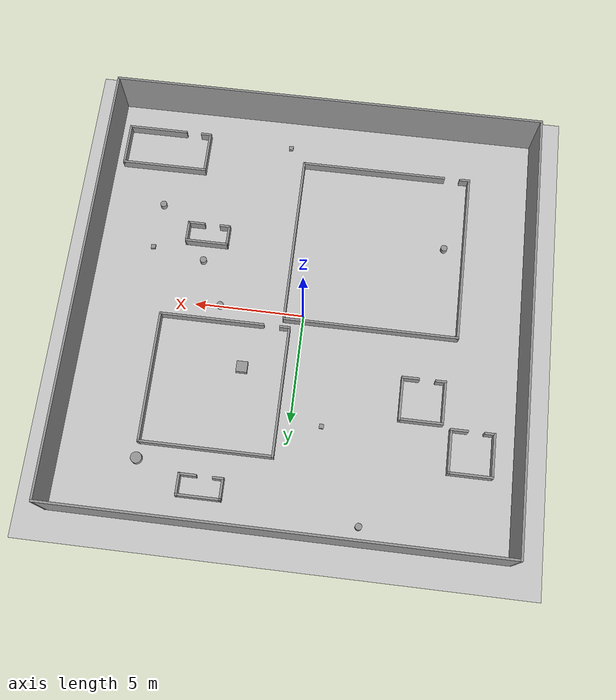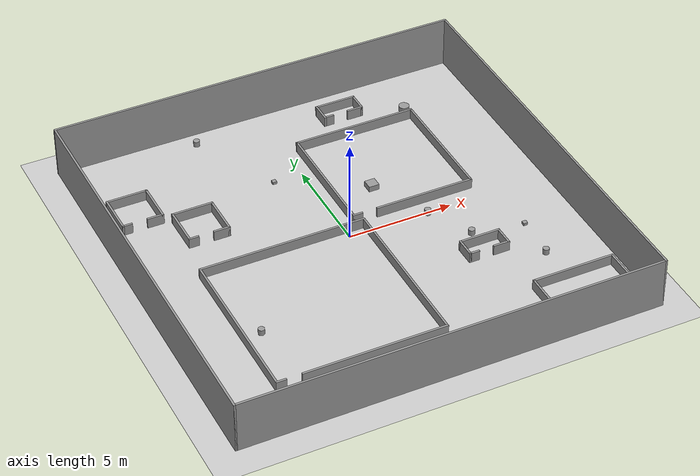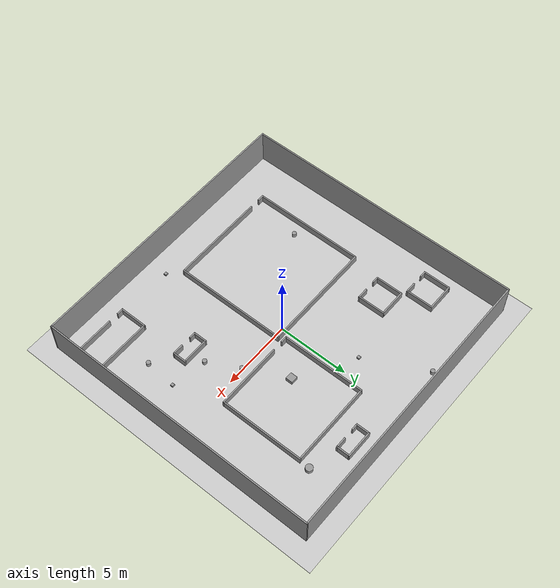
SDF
<sdf version="1.6">
  <world name="default">
    <light name="sun" type="directional">
      <cast_shadows>1</cast_shadows>
      <pose frame="">0 0 10 0 -0 0</pose>
      <diffuse>0.8 0.8 0.8 1</diffuse>
      <specular>0.2 0.2 0.2 1</specular>
      <attenuation>
        <range>1000</range>
        <constant>0.9</constant>
        <linear>0.01</linear>
        <quadratic>0.001</quadratic>
      </attenuation>
      <direction>-0.5 0.1 -0.9</direction>
    </light>
    <model name="ground_plane">
      <static>1</static>
      <link name="link">
        <collision name="collision">
          <geometry>
            <plane>
              <normal>0 0 1</normal>
              <size>20 20</size>
            </plane>
          </geometry>
          <surface>
            <contact>
              <collide_bitmask>65535</collide_bitmask>
              <ode />
            </contact>
            <friction>
              <ode>
                <mu>100</mu>
                <mu2>50</mu2>
              </ode>
              <torsional>
                <ode />
              </torsional>
            </friction>
            <bounce />
          </surface>
          <max_contacts>10</max_contacts>
        </collision>
        <visual name="visual">
          <cast_shadows>0</cast_shadows>
          <geometry>
            <plane>
              <normal>0 0 1</normal>
              <size>20 20</size>
            </plane>
          </geometry>
          <material>
            <script>
              <uri>file://media/materials/scripts/gazebo.material</uri>
              <name>Gazebo/Grey</name>
            </script>
          </material>
        </visual>
        <self_collide>0</self_collide>
        <enable_wind>0</enable_wind>
        <kinematic>0</kinematic>
      </link>
    </model>
     <model name="outsidewall.sdf">
    <pose frame="">0 0 0 0 -0 0</pose>
    <link name="Wall_3">
      <collision name="Wall_3_Collision">
        <geometry>
          <box>
            <size>20 0.10 2.5</size>
          </box>
        </geometry>
        <pose frame="">0 0 1.25 0 -0 0</pose>
      </collision>
      <visual name="Wall_3_Visual">
        <pose frame="">0 0 1.25 0 -0 0</pose>
        <geometry>
          <box>
            <size>20 0.10 2.5</size>
          </box>
        </geometry>
        <material>
          <script>
            <uri>file://media/materials/scripts/gazebo.material</uri>
            <name>Gazebo/Grey</name>
          </script>
          <ambient>1 1 1 1</ambient>
        </material>
        <meta>
          <layer>0</layer>
        </meta>
      </visual>
      <pose frame="">0 9.95 0 0 -0 0</pose>
    </link>
    <link name="Wall_5">
      <collision name="Wall_5_Collision">
        <geometry>
          <box>
            <size>20 0.10 2.5</size>
          </box>
        </geometry>
        <pose frame="">0 0 1.25 0 -0 0</pose>
      </collision>
      <visual name="Wall_5_Visual">
        <pose frame="">0 0 1.25 0 -0 0</pose>
        <geometry>
          <box>
            <size>20 0.10 2.5</size>
          </box>
        </geometry>
        <material>
          <script>
            <uri>file://media/materials/scripts/gazebo.material</uri>
            <name>Gazebo/Grey</name>
          </script>
          <ambient>1 1 1 1</ambient>
        </material>
        <meta>
          <layer>0</layer>
        </meta>
      </visual>
      <pose frame="">-9.95 0 0 0 -0 1.5707</pose>
    </link>
    <link name="Wall_6">
      <collision name="Wall_6_Collision">
        <geometry>
          <box>
            <size>20 0.10 2.5</size>
          </box>
        </geometry>
        <pose frame="">0 0 1.25 0 -0 0</pose>
      </collision>
      <visual name="Wall_6_Visual">
        <pose frame="">0 0 1.25 0 -0 0</pose>
        <geometry>
          <box>
            <size>20 0.10 2.5</size>
          </box>
        </geometry>
        <material>
          <script>
            <uri>file://media/materials/scripts/gazebo.material</uri>
            <name>Gazebo/Grey</name>
          </script>
          <ambient>1 1 1 1</ambient>
        </material>
        <meta>
          <layer>0</layer>
        </meta>
      </visual>
      <pose frame="">0 -9.95 0 0 -0 0</pose>
    </link>
    <link name="Wall_7">
      <collision name="Wall_7_Collision">
        <geometry>
          <box>
            <size>20 0.10 2.5</size>
          </box>
        </geometry>
        <pose frame="">0 0 1.25 0 -0 0</pose>
      </collision>
      <visual name="Wall_7_Visual">
        <pose frame="">0 0 1.25 0 -0 0</pose>
        <geometry>
          <box>
            <size>20 0.10 2.5</size>
          </box>
        </geometry>
        <material>
          <script>
            <uri>file://media/materials/scripts/gazebo.material</uri>
            <name>Gazebo/Grey</name>
          </script>
          <ambient>1 1 1 1</ambient>
        </material>
        <meta>
          <layer>0</layer>
        </meta>
      </visual>
      <pose frame="">9.95 0 0 0 -0 1.5707</pose>
    </link>
    <static>1</static>
  </model>
    <gravity>0 0 -9.8</gravity>
    <magnetic_field>6e-06 2.3e-05 -4.2e-05</magnetic_field>
    <atmosphere type="adiabatic" />
    <physics default="0" name="default_physics" type="ode">
      <max_step_size>0.001</max_step_size>
      <real_time_factor>1</real_time_factor>
      <real_time_update_rate>1000</real_time_update_rate>
    </physics>
    <scene>
      <ambient>0.4 0.4 0.4 1</ambient>
      <background>0.7 0.7 0.7 1</background>
      <shadows>1</shadows>
    </scene>
    <audio>
      <device>default</device>
    </audio>
    <wind />
    <spherical_coordinates>
      <surface_model>EARTH_WGS84</surface_model>
      <latitude_deg>0</latitude_deg>
      <longitude_deg>0</longitude_deg>
      <elevation>0</elevation>
      <heading_deg>0</heading_deg>
    </spherical_coordinates>
    <gui fullscreen="0">
      <camera name="user_camera">
        <pose frame="">17.6964 -3.39131 8.77294 0 0.343643 2.9522</pose>
        <view_controller>orbit</view_controller>
        <projection_type>perspective</projection_type>
      </camera>
    </gui>

  <model name="shape1">
    <pose frame="">3.5 8.3 0 0 -0 0</pose>
    <link name="Wall_0">
      <collision name="Wall_0_Collision">
        <geometry>
          <box>
            <size>2 0.1 0.5</size>
          </box>
        </geometry>
        <pose frame="">0 0 0.25 0 -0 0</pose>
      </collision>
      <visual name="Wall_0_Visual">
        <pose frame="">0 0 0.25 0 -0 0</pose>
        <geometry>
          <box>
            <size>2 0.1 0.5</size>
          </box>
        </geometry>
        <material>
          <script>
            <uri>file://media/materials/scripts/gazebo.material</uri>
            <name>Gazebo/Grey</name>
          </script>
          <ambient>1 1 1 1</ambient>
        </material>
        <meta>
          <layer>0</layer>
        </meta>
      </visual>
      <pose frame="">0 0.45 0 0 -0 0</pose>
    </link>
    <link name="Wall_1">
      <collision name="Wall_1_Collision">
        <geometry>
          <box>
            <size>1 0.1 0.5</size>
          </box>
        </geometry>
        <pose frame="">0 0 0.25 0 -0 0</pose>
      </collision>
      <visual name="Wall_1_Visual">
        <pose frame="">0 0 0.25 0 -0 0</pose>
        <geometry>
          <box>
            <size>1 0.1 0.5</size>
          </box>
        </geometry>
        <material>
          <script>
            <uri>file://media/materials/scripts/gazebo.material</uri>
            <name>Gazebo/Grey</name>
          </script>
          <ambient>1 1 1 1</ambient>
        </material>
        <meta>
          <layer>0</layer>
        </meta>
      </visual>
      <pose frame="">0.95 -0 0 0 -0 -1.5708</pose>
    </link>
    <link name="Wall_2">
      <collision name="Wall_2_Collision">
        <geometry>
          <box>
            <size>0.8 0.1 0.5</size>
          </box>
        </geometry>
        <pose frame="">0 0 0.25 0 -0 0</pose>
      </collision>
      <visual name="Wall_2_Visual">
        <pose frame="">0 0 0.25 0 -0 0</pose>
        <geometry>
          <box>
            <size>0.8 0.1 0.5</size>
          </box>
        </geometry>
        <material>
          <script>
            <uri>file://media/materials/scripts/gazebo.material</uri>
            <name>Gazebo/Grey</name>
          </script>
          <ambient>1 1 1 1</ambient>
        </material>
        <meta>
          <layer>0</layer>
        </meta>
      </visual>
      <pose frame="">0.6 -0.45 0 0 -0 3.14159</pose>
    </link>
    <link name="Wall_4">
      <collision name="Wall_4_Collision">
        <geometry>
          <box>
            <size>1 0.1 0.5</size>
          </box>
        </geometry>
        <pose frame="">0 0 0.25 0 -0 0</pose>
      </collision>
      <visual name="Wall_4_Visual">
        <pose frame="">0 0 0.25 0 -0 0</pose>
        <geometry>
          <box>
            <size>1 0.1 0.5</size>
          </box>
        </geometry>
        <material>
          <script>
            <uri>file://media/materials/scripts/gazebo.material</uri>
            <name>Gazebo/Grey</name>
          </script>
          <ambient>1 1 1 1</ambient>
        </material>
        <meta>
          <layer>0</layer>
        </meta>
      </visual>
      <pose frame="">-0.95 -0 0 0 -0 -1.5708</pose>
    </link>
    <link name="Wall_5">
      <collision name="Wall_5_Collision">
        <geometry>
          <box>
            <size>0.499474 0.1 0.5</size>
          </box>
        </geometry>
        <pose frame="">0 0 0.25 0 -0 0</pose>
      </collision>
      <visual name="Wall_5_Visual">
        <pose frame="">0 0 0.25 0 -0 0</pose>
        <geometry>
          <box>
            <size>0.499474 0.1 0.5</size>
          </box>
        </geometry>
        <material>
          <script>
            <uri>file://media/materials/scripts/gazebo.material</uri>
            <name>Gazebo/Grey</name>
          </script>
          <ambient>1 1 1 1</ambient>
        </material>
        <meta>
          <layer>0</layer>
        </meta>
      </visual>
      <pose frame="">-0.75 -0.45 0 0 -0 0</pose>
    </link>
    <static>1</static>
  </model>
<model name="box_d=20">
    <link name="link_2">
      <inertial>
        <mass>1</mass>
        <inertia>
          <ixx>0.166667</ixx>
          <ixy>0</ixy>
          <ixz>0</ixz>
          <iyy>0.166667</iyy>
          <iyz>0</iyz>
          <izz>0.166667</izz>
        </inertia>
        <pose frame="">0 0 0 0 -0 0</pose>
      </inertial>
      <pose frame="">7.4 -2.6 0 0 -0 0</pose>
      <gravity>1</gravity>
      <self_collide>0</self_collide>
      <kinematic>0</kinematic>
      <enable_wind>0</enable_wind>
      <visual name="visual">
        <pose frame="">0 0 0 0 -0 0</pose>
        <geometry>
          <box>
            <size>0.2 0.2 0.2</size>
          </box>
        </geometry>
        <material>
          <lighting>1</lighting>
          <script>
            <uri>file://media/materials/scripts/gazebo.material</uri>
            <name>Gazebo/Grey</name>
          </script>
          <shader type="vertex">
            <normal_map>__default__</normal_map>
          </shader>
          <ambient>0.3 0.3 0.3 1</ambient>
          <diffuse>0.7 0.7 0.7 1</diffuse>
          <specular>0.01 0.01 0.01 1</specular>
          <emissive>0 0 0 1</emissive>
        </material>
        <transparency>0</transparency>
        <cast_shadows>1</cast_shadows>
      </visual>
      <collision name="collision">
        <laser_retro>0</laser_retro>
        <max_contacts>10</max_contacts>
        <pose frame="">0 0 0 0 -0 0</pose>
        <geometry>
          <box>
            <size>0.2 0.2 0.2</size>
          </box>
        </geometry>
        <surface>
          <friction>
            <ode>
              <mu>1</mu>
              <mu2>1</mu2>
              <fdir1>0 0 0</fdir1>
              <slip1>0</slip1>
              <slip2>0</slip2>
            </ode>
            <torsional>
              <coefficient>1</coefficient>
              <patch_radius>0</patch_radius>
              <surface_radius>0</surface_radius>
              <use_patch_radius>1</use_patch_radius>
              <ode>
                <slip>0</slip>
              </ode>
            </torsional>
          </friction>
          <bounce>
            <restitution_coefficient>0</restitution_coefficient>
            <threshold>1e+06</threshold>
          </bounce>
          <contact>
            <collide_without_contact>0</collide_without_contact>
            <collide_without_contact_bitmask>1</collide_without_contact_bitmask>
            <collide_bitmask>1</collide_bitmask>
            <ode>
              <soft_cfm>0</soft_cfm>
              <soft_erp>0.2</soft_erp>
              <kp>1e+13</kp>
              <kd>1</kd>
              <max_vel>0.01</max_vel>
              <min_depth>0</min_depth>
            </ode>
            <bullet>
              <split_impulse>1</split_impulse>
              <split_impulse_penetration_threshold>-0.01</split_impulse_penetration_threshold>
              <soft_cfm>0</soft_cfm>
              <soft_erp>0.2</soft_erp>
              <kp>1e+13</kp>
              <kd>1</kd>
            </bullet>
          </contact>
        </surface>
      </collision>
    </link>
    <static>0</static>
    <allow_auto_disable>1</allow_auto_disable>
  </model>
<model name="shape7">
    <pose frame="">3.5 3.7 0 0 -0 0</pose>
    <link name="Wall_34">
      <collision name="Wall_34_Collision">
        <geometry>
          <box>
            <size>6 0.1 0.5</size>
          </box>
        </geometry>
        <pose frame="">0 0 0.25 0 -0 0</pose>
      </collision>
      <visual name="Wall_34_Visual">
        <pose frame="">0 0 0.25 0 -0 0</pose>
        <geometry>
          <box>
            <size>6 0.1 0.5</size>
          </box>
        </geometry>
        <material>
          <script>
            <uri>file://media/materials/scripts/gazebo.material</uri>
            <name>Gazebo/Grey</name>
          </script>
          <ambient>1 1 1 1</ambient>
        </material>
        <meta>
          <layer>0</layer>
        </meta>
      </visual>
      <pose frame="">0 2.95 0 0 -0 0</pose>
    </link>
    <link name="Wall_35">
      <collision name="Wall_35_Collision">
        <geometry>
          <box>
            <size>6 0.1 0.5</size>
          </box>
        </geometry>
        <pose frame="">0 0 0.25 0 -0 0</pose>
      </collision>
      <visual name="Wall_35_Visual">
        <pose frame="">0 0 0.25 0 -0 0</pose>
        <geometry>
          <box>
            <size>6 0.1 0.5</size>
          </box>
        </geometry>
        <material>
          <script>
            <uri>file://media/materials/scripts/gazebo.material</uri>
            <name>Gazebo/Grey</name>
          </script>
          <ambient>1 1 1 1</ambient>
        </material>
        <meta>
          <layer>0</layer>
        </meta>
      </visual>
      <pose frame="">2.95 0 0 0 -0 -1.5708</pose>
    </link>
    <link name="Wall_36">
      <collision name="Wall_36_Collision">
        <geometry>
          <box>
            <size>4.8 0.1 0.5</size>
          </box>
        </geometry>
        <pose frame="">0 0 0.25 0 -0 0</pose>
      </collision>
      <visual name="Wall_36_Visual">
        <pose frame="">0 0 0.25 0 -0 0</pose>
        <geometry>
          <box>
            <size>4.8 0.1 0.5</size>
          </box>
        </geometry>
        <material>
          <script>
            <uri>file://media/materials/scripts/gazebo.material</uri>
            <name>Gazebo/Grey</name>
          </script>
          <ambient>1 1 1 1</ambient>
        </material>
        <meta>
          <layer>0</layer>
        </meta>
      </visual>
      <pose frame="">0.6 -2.95 0 0 -0 3.14159</pose>
    </link>
    <link name="Wall_38">
      <collision name="Wall_38_Collision">
        <geometry>
          <box>
            <size>6 0.1 0.5</size>
          </box>
        </geometry>
        <pose frame="">0 0 0.25 0 -0 0</pose>
      </collision>
      <visual name="Wall_38_Visual">
        <pose frame="">0 0 0.25 0 -0 0</pose>
        <geometry>
          <box>
            <size>6 0.1 0.5</size>
          </box>
        </geometry>
        <material>
          <script>
            <uri>file://media/materials/scripts/gazebo.material</uri>
            <name>Gazebo/Grey</name>
          </script>
          <ambient>1 1 1 1</ambient>
        </material>
        <meta>
          <layer>0</layer>
        </meta>
      </visual>
      <pose frame="">-2.95 0 0 0 -0 -1.5708</pose>
    </link>
    <link name="Wall_39">
      <collision name="Wall_39_Collision">
        <geometry>
          <box>
            <size>0.5 0.1 0.5</size>
          </box>
        </geometry>
        <pose frame="">0 0 0.25 0 -0 0</pose>
      </collision>
      <visual name="Wall_39_Visual">
        <pose frame="">0 0 0.25 0 -0 0</pose>
        <geometry>
          <box>
            <size>0.5 0.1 0.5</size>
          </box>
        </geometry>
        <material>
          <script>
            <uri>file://media/materials/scripts/gazebo.material</uri>
            <name>Gazebo/Grey</name>
          </script>
          <ambient>1 1 1 1</ambient>
        </material>
        <meta>
          <layer>0</layer>
        </meta>
      </visual>
      <pose frame="">-2.75 -2.95 0 0 -0 0</pose>
    </link>
    <static>1</static>
  </model>
<model name="box_d=20">
    <link name="link_2">
      <inertial>
        <mass>1</mass>
        <inertia>
          <ixx>0.166667</ixx>
          <ixy>0</ixy>
          <ixz>0</ixz>
          <iyy>0.166667</iyy>
          <iyz>0</iyz>
          <izz>0.166667</izz>
        </inertia>
        <pose frame="">0 0 0 0 -0 0</pose>
      </inertial>
      <pose frame="">-1.4 5 0 0 -0 0</pose>
      <gravity>1</gravity>
      <self_collide>0</self_collide>
      <kinematic>0</kinematic>
      <enable_wind>0</enable_wind>
      <visual name="visual">
        <pose frame="">0 0 0 0 -0 0</pose>
        <geometry>
          <box>
            <size>0.2 0.2 0.2</size>
          </box>
        </geometry>
        <material>
          <lighting>1</lighting>
          <script>
            <uri>file://media/materials/scripts/gazebo.material</uri>
            <name>Gazebo/Grey</name>
          </script>
          <shader type="vertex">
            <normal_map>__default__</normal_map>
          </shader>
          <ambient>0.3 0.3 0.3 1</ambient>
          <diffuse>0.7 0.7 0.7 1</diffuse>
          <specular>0.01 0.01 0.01 1</specular>
          <emissive>0 0 0 1</emissive>
        </material>
        <transparency>0</transparency>
        <cast_shadows>1</cast_shadows>
      </visual>
      <collision name="collision">
        <laser_retro>0</laser_retro>
        <max_contacts>10</max_contacts>
        <pose frame="">0 0 0 0 -0 0</pose>
        <geometry>
          <box>
            <size>0.2 0.2 0.2</size>
          </box>
        </geometry>
        <surface>
          <friction>
            <ode>
              <mu>1</mu>
              <mu2>1</mu2>
              <fdir1>0 0 0</fdir1>
              <slip1>0</slip1>
              <slip2>0</slip2>
            </ode>
            <torsional>
              <coefficient>1</coefficient>
              <patch_radius>0</patch_radius>
              <surface_radius>0</surface_radius>
              <use_patch_radius>1</use_patch_radius>
              <ode>
                <slip>0</slip>
              </ode>
            </torsional>
          </friction>
          <bounce>
            <restitution_coefficient>0</restitution_coefficient>
            <threshold>1e+06</threshold>
          </bounce>
          <contact>
            <collide_without_contact>0</collide_without_contact>
            <collide_without_contact_bitmask>1</collide_without_contact_bitmask>
            <collide_bitmask>1</collide_bitmask>
            <ode>
              <soft_cfm>0</soft_cfm>
              <soft_erp>0.2</soft_erp>
              <kp>1e+13</kp>
              <kd>1</kd>
              <max_vel>0.01</max_vel>
              <min_depth>0</min_depth>
            </ode>
            <bullet>
              <split_impulse>1</split_impulse>
              <split_impulse_penetration_threshold>-0.01</split_impulse_penetration_threshold>
              <soft_cfm>0</soft_cfm>
              <soft_erp>0.2</soft_erp>
              <kp>1e+13</kp>
              <kd>1</kd>
            </bullet>
          </contact>
        </surface>
      </collision>
    </link>
    <static>0</static>
    <allow_auto_disable>1</allow_auto_disable>
  </model>
<model name="shape2">
    <pose frame="">7.5 -7.6 0 0 -0 0</pose>
    <link name="Wall_0">
      <collision name="Wall_0_Collision">
        <geometry>
          <box>
            <size>3.98685 0.1 0.5</size>
          </box>
        </geometry>
        <pose frame="">0 0 0.25 0 -0 0</pose>
      </collision>
      <visual name="Wall_0_Visual">
        <pose frame="">0 0 0.25 0 -0 0</pose>
        <geometry>
          <box>
            <size>3.98685 0.1 0.5</size>
          </box>
        </geometry>
        <material>
          <script>
            <uri>file://media/materials/scripts/gazebo.material</uri>
            <name>Gazebo/Grey</name>
          </script>
          <ambient>1 1 1 1</ambient>
        </material>
        <meta>
          <layer>0</layer>
        </meta>
      </visual>
      <pose frame="">0.003288 0.95 0 0 -0 0</pose>
    </link>
    <link name="Wall_1">
      <collision name="Wall_1_Collision">
        <geometry>
          <box>
            <size>2 0.1 0.5</size>
          </box>
        </geometry>
        <pose frame="">0 0 0.25 0 -0 0</pose>
      </collision>
      <visual name="Wall_1_Visual">
        <pose frame="">0 0 0.25 0 -0 0</pose>
        <geometry>
          <box>
            <size>2 0.1 0.5</size>
          </box>
        </geometry>
        <material>
          <script>
            <uri>file://media/materials/scripts/gazebo.material</uri>
            <name>Gazebo/Grey</name>
          </script>
          <ambient>1 1 1 1</ambient>
        </material>
        <meta>
          <layer>0</layer>
        </meta>
      </visual>
      <pose frame="">1.94671 0 0 0 -0 -1.5708</pose>
    </link>
    <link name="Wall_2">
      <collision name="Wall_2_Collision">
        <geometry>
          <box>
            <size>2.8 0.1 0.5</size>
          </box>
        </geometry>
        <pose frame="">0 0 0.25 0 -0 0</pose>
      </collision>
      <visual name="Wall_2_Visual">
        <pose frame="">0 0 0.25 0 -0 0</pose>
        <geometry>
          <box>
            <size>2.8 0.1 0.5</size>
          </box>
        </geometry>
        <material>
          <script>
            <uri>file://media/materials/scripts/gazebo.material</uri>
            <name>Gazebo/Grey</name>
          </script>
          <ambient>1 1 1 1</ambient>
        </material>
        <meta>
          <layer>0</layer>
        </meta>
      </visual>
      <pose frame="">0.596712 -0.95 0 0 -0 3.14159</pose>
    </link>
    <link name="Wall_4">
      <collision name="Wall_4_Collision">
        <geometry>
          <box>
            <size>2 0.1 0.5</size>
          </box>
        </geometry>
        <pose frame="">0 0 0.25 0 -0 0</pose>
      </collision>
      <visual name="Wall_4_Visual">
        <pose frame="">0 0 0.25 0 -0 0</pose>
        <geometry>
          <box>
            <size>2 0.1 0.5</size>
          </box>
        </geometry>
        <material>
          <script>
            <uri>file://media/materials/scripts/gazebo.material</uri>
            <name>Gazebo/Grey</name>
          </script>
          <ambient>1 1 1 1</ambient>
        </material>
        <meta>
          <layer>0</layer>
        </meta>
      </visual>
      <pose frame="">-1.94671 0 0 0 -0 -1.5708</pose>
    </link>
    <link name="Wall_5">
      <collision name="Wall_5_Collision">
        <geometry>
          <box>
            <size>0.5 0.1 0.5</size>
          </box>
        </geometry>
        <pose frame="">0 0 0.25 0 -0 0</pose>
      </collision>
      <visual name="Wall_5_Visual">
        <pose frame="">0 0 0.25 0 -0 0</pose>
        <geometry>
          <box>
            <size>0.5 0.1 0.5</size>
          </box>
        </geometry>
        <material>
          <script>
            <uri>file://media/materials/scripts/gazebo.material</uri>
            <name>Gazebo/Grey</name>
          </script>
          <ambient>1 1 1 1</ambient>
        </material>
        <meta>
          <layer>0</layer>
        </meta>
      </visual>
      <pose frame="">-1.74671 -0.95 0 0 -0 0</pose>
    </link>
    <static>1</static>
  </model>
<model name="cylinder_d=30">
    <link name="link_0">
      <inertial>
        <mass>1</mass>
        <inertia>
          <ixx>0.145833</ixx>
          <ixy>0</ixy>
          <ixz>0</ixz>
          <iyy>0.145833</iyy>
          <iyz>0</iyz>
          <izz>0.125</izz>
        </inertia>
        <pose frame="">0 0 0 0 -0 0</pose>
      </inertial>
      <pose frame="">4.95 -2.15 0 0 -0 0</pose>
      <gravity>1</gravity>
      <self_collide>0</self_collide>
      <kinematic>0</kinematic>
      <enable_wind>0</enable_wind>
      <visual name="visual">
        <pose frame="">0 0 0 0 -0 0</pose>
        <geometry>
          <cylinder>
            <radius>0.15</radius>
            <length>0.5</length>
          </cylinder>
        </geometry>
        <material>
          <lighting>1</lighting>
          <script>
            <uri>file://media/materials/scripts/gazebo.material</uri>
            <name>Gazebo/Grey</name>
          </script>
          <shader type="vertex">
            <normal_map>__default__</normal_map>
          </shader>
          <ambient>0.3 0.3 0.3 1</ambient>
          <diffuse>0.7 0.7 0.7 1</diffuse>
          <specular>0.01 0.01 0.01 1</specular>
          <emissive>0 0 0 1</emissive>
        </material>
        <transparency>0</transparency>
        <cast_shadows>1</cast_shadows>
      </visual>
      <collision name="collision">
        <laser_retro>0</laser_retro>
        <max_contacts>10</max_contacts>
        <pose frame="">0 0 0 0 -0 0</pose>
        <geometry>
          <cylinder>
            <radius>0.15</radius>
            <length>0.5</length>
          </cylinder>
        </geometry>
        <surface>
          <friction>
            <ode>
              <mu>1</mu>
              <mu2>1</mu2>
              <fdir1>0 0 0</fdir1>
              <slip1>0</slip1>
              <slip2>0</slip2>
            </ode>
            <torsional>
              <coefficient>1</coefficient>
              <patch_radius>0</patch_radius>
              <surface_radius>0</surface_radius>
              <use_patch_radius>1</use_patch_radius>
              <ode>
                <slip>0</slip>
              </ode>
            </torsional>
          </friction>
          <bounce>
            <restitution_coefficient>0</restitution_coefficient>
            <threshold>1e+06</threshold>
          </bounce>
          <contact>
            <collide_without_contact>0</collide_without_contact>
            <collide_without_contact_bitmask>1</collide_without_contact_bitmask>
            <collide_bitmask>1</collide_bitmask>
            <ode>
              <soft_cfm>0</soft_cfm>
              <soft_erp>0.2</soft_erp>
              <kp>1e+13</kp>
              <kd>1</kd>
              <max_vel>0.01</max_vel>
              <min_depth>0</min_depth>
            </ode>
            <bullet>
              <split_impulse>1</split_impulse>
              <split_impulse_penetration_threshold>-0.01</split_impulse_penetration_threshold>
              <soft_cfm>0</soft_cfm>
              <soft_erp>0.2</soft_erp>
              <kp>1e+13</kp>
              <kd>1</kd>
            </bullet>
          </contact>
        </surface>
      </collision>
    </link>
    <static>0</static>
    <allow_auto_disable>1</allow_auto_disable>
  </model>
<model name="cylinder_d=30">
    <link name="link_0">
      <inertial>
        <mass>1</mass>
        <inertia>
          <ixx>0.145833</ixx>
          <ixy>0</ixy>
          <ixz>0</ixz>
          <iyy>0.145833</iyy>
          <iyz>0</iyz>
          <izz>0.125</izz>
        </inertia>
        <pose frame="">0 0 0 0 -0 0</pose>
      </inertial>
      <pose frame="">-3.45 9.15 0 0 -0 0</pose>
      <gravity>1</gravity>
      <self_collide>0</self_collide>
      <kinematic>0</kinematic>
      <enable_wind>0</enable_wind>
      <visual name="visual">
        <pose frame="">0 0 0 0 -0 0</pose>
        <geometry>
          <cylinder>
            <radius>0.15</radius>
            <length>0.5</length>
          </cylinder>
        </geometry>
        <material>
          <lighting>1</lighting>
          <script>
            <uri>file://media/materials/scripts/gazebo.material</uri>
            <name>Gazebo/Grey</name>
          </script>
          <shader type="vertex">
            <normal_map>__default__</normal_map>
          </shader>
          <ambient>0.3 0.3 0.3 1</ambient>
          <diffuse>0.7 0.7 0.7 1</diffuse>
          <specular>0.01 0.01 0.01 1</specular>
          <emissive>0 0 0 1</emissive>
        </material>
        <transparency>0</transparency>
        <cast_shadows>1</cast_shadows>
      </visual>
      <collision name="collision">
        <laser_retro>0</laser_retro>
        <max_contacts>10</max_contacts>
        <pose frame="">0 0 0 0 -0 0</pose>
        <geometry>
          <cylinder>
            <radius>0.15</radius>
            <length>0.5</length>
          </cylinder>
        </geometry>
        <surface>
          <friction>
            <ode>
              <mu>1</mu>
              <mu2>1</mu2>
              <fdir1>0 0 0</fdir1>
              <slip1>0</slip1>
              <slip2>0</slip2>
            </ode>
            <torsional>
              <coefficient>1</coefficient>
              <patch_radius>0</patch_radius>
              <surface_radius>0</surface_radius>
              <use_patch_radius>1</use_patch_radius>
              <ode>
                <slip>0</slip>
              </ode>
            </torsional>
          </friction>
          <bounce>
            <restitution_coefficient>0</restitution_coefficient>
            <threshold>1e+06</threshold>
          </bounce>
          <contact>
            <collide_without_contact>0</collide_without_contact>
            <collide_without_contact_bitmask>1</collide_without_contact_bitmask>
            <collide_bitmask>1</collide_bitmask>
            <ode>
              <soft_cfm>0</soft_cfm>
              <soft_erp>0.2</soft_erp>
              <kp>1e+13</kp>
              <kd>1</kd>
              <max_vel>0.01</max_vel>
              <min_depth>0</min_depth>
            </ode>
            <bullet>
              <split_impulse>1</split_impulse>
              <split_impulse_penetration_threshold>-0.01</split_impulse_penetration_threshold>
              <soft_cfm>0</soft_cfm>
              <soft_erp>0.2</soft_erp>
              <kp>1e+13</kp>
              <kd>1</kd>
            </bullet>
          </contact>
        </surface>
      </collision>
    </link>
    <static>0</static>
    <allow_auto_disable>1</allow_auto_disable>
  </model>
<model name="shape8">
    <pose frame="">-3.1 -3.6 0 0 -0 0</pose>
    <link name="Wall_41">
      <collision name="Wall_41_Collision">
        <geometry>
          <box>
            <size>8 0.1 0.5</size>
          </box>
        </geometry>
        <pose frame="">0 0 0.25 0 -0 0</pose>
      </collision>
      <visual name="Wall_41_Visual">
        <pose frame="">0 0 0.25 0 -0 0</pose>
        <geometry>
          <box>
            <size>8 0.1 0.5</size>
          </box>
        </geometry>
        <material>
          <script>
            <uri>file://media/materials/scripts/gazebo.material</uri>
            <name>Gazebo/Grey</name>
          </script>
          <ambient>1 1 1 1</ambient>
        </material>
        <meta>
          <layer>0</layer>
        </meta>
      </visual>
      <pose frame="">0 3.95 0 0 -0 0</pose>
    </link>
    <link name="Wall_42">
      <collision name="Wall_42_Collision">
        <geometry>
          <box>
            <size>8 0.1 0.5</size>
          </box>
        </geometry>
        <pose frame="">0 0 0.25 0 -0 0</pose>
      </collision>
      <visual name="Wall_42_Visual">
        <pose frame="">0 0 0.25 0 -0 0</pose>
        <geometry>
          <box>
            <size>8 0.1 0.5</size>
          </box>
        </geometry>
        <material>
          <script>
            <uri>file://media/materials/scripts/gazebo.material</uri>
            <name>Gazebo/Grey</name>
          </script>
          <ambient>1 1 1 1</ambient>
        </material>
        <meta>
          <layer>0</layer>
        </meta>
      </visual>
      <pose frame="">3.95 -0 0 0 -0 -1.5708</pose>
    </link>
    <link name="Wall_43">
      <collision name="Wall_43_Collision">
        <geometry>
          <box>
            <size>6.8 0.1 0.5</size>
          </box>
        </geometry>
        <pose frame="">0 0 0.25 0 -0 0</pose>
      </collision>
      <visual name="Wall_43_Visual">
        <pose frame="">0 0 0.25 0 -0 0</pose>
        <geometry>
          <box>
            <size>6.8 0.1 0.5</size>
          </box>
        </geometry>
        <material>
          <script>
            <uri>file://media/materials/scripts/gazebo.material</uri>
            <name>Gazebo/Grey</name>
          </script>
          <ambient>1 1 1 1</ambient>
        </material>
        <meta>
          <layer>0</layer>
        </meta>
      </visual>
      <pose frame="">0.6 -3.95 0 0 -0 3.14159</pose>
    </link>
    <link name="Wall_45">
      <collision name="Wall_45_Collision">
        <geometry>
          <box>
            <size>8 0.1 0.5</size>
          </box>
        </geometry>
        <pose frame="">0 0 0.25 0 -0 0</pose>
      </collision>
      <visual name="Wall_45_Visual">
        <pose frame="">0 0 0.25 0 -0 0</pose>
        <geometry>
          <box>
            <size>8 0.1 0.5</size>
          </box>
        </geometry>
        <material>
          <script>
            <uri>file://media/materials/scripts/gazebo.material</uri>
            <name>Gazebo/Grey</name>
          </script>
          <ambient>1 1 1 1</ambient>
        </material>
        <meta>
          <layer>0</layer>
        </meta>
      </visual>
      <pose frame="">-3.95 -0 0 0 -0 -1.5708</pose>
    </link>
    <link name="Wall_46">
      <collision name="Wall_46_Collision">
        <geometry>
          <box>
            <size>0.5 0.1 0.5</size>
          </box>
        </geometry>
        <pose frame="">0 0 0.25 0 -0 0</pose>
      </collision>
      <visual name="Wall_46_Visual">
        <pose frame="">0 0 0.25 0 -0 0</pose>
        <geometry>
          <box>
            <size>0.5 0.1 0.5</size>
          </box>
        </geometry>
        <material>
          <script>
            <uri>file://media/materials/scripts/gazebo.material</uri>
            <name>Gazebo/Grey</name>
          </script>
          <ambient>1 1 1 1</ambient>
        </material>
        <meta>
          <layer>0</layer>
        </meta>
      </visual>
      <pose frame="">-3.75 -3.95 0 0 -0 0</pose>
    </link>
    <static>1</static>
  </model>
<model name="shape1">
    <pose frame="">4.9 -3.4 0 0 -0 0</pose>
    <link name="Wall_0">
      <collision name="Wall_0_Collision">
        <geometry>
          <box>
            <size>2 0.1 0.5</size>
          </box>
        </geometry>
        <pose frame="">0 0 0.25 0 -0 0</pose>
      </collision>
      <visual name="Wall_0_Visual">
        <pose frame="">0 0 0.25 0 -0 0</pose>
        <geometry>
          <box>
            <size>2 0.1 0.5</size>
          </box>
        </geometry>
        <material>
          <script>
            <uri>file://media/materials/scripts/gazebo.material</uri>
            <name>Gazebo/Grey</name>
          </script>
          <ambient>1 1 1 1</ambient>
        </material>
        <meta>
          <layer>0</layer>
        </meta>
      </visual>
      <pose frame="">0 0.45 0 0 -0 0</pose>
    </link>
    <link name="Wall_1">
      <collision name="Wall_1_Collision">
        <geometry>
          <box>
            <size>1 0.1 0.5</size>
          </box>
        </geometry>
        <pose frame="">0 0 0.25 0 -0 0</pose>
      </collision>
      <visual name="Wall_1_Visual">
        <pose frame="">0 0 0.25 0 -0 0</pose>
        <geometry>
          <box>
            <size>1 0.1 0.5</size>
          </box>
        </geometry>
        <material>
          <script>
            <uri>file://media/materials/scripts/gazebo.material</uri>
            <name>Gazebo/Grey</name>
          </script>
          <ambient>1 1 1 1</ambient>
        </material>
        <meta>
          <layer>0</layer>
        </meta>
      </visual>
      <pose frame="">0.95 -0 0 0 -0 -1.5708</pose>
    </link>
    <link name="Wall_2">
      <collision name="Wall_2_Collision">
        <geometry>
          <box>
            <size>0.8 0.1 0.5</size>
          </box>
        </geometry>
        <pose frame="">0 0 0.25 0 -0 0</pose>
      </collision>
      <visual name="Wall_2_Visual">
        <pose frame="">0 0 0.25 0 -0 0</pose>
        <geometry>
          <box>
            <size>0.8 0.1 0.5</size>
          </box>
        </geometry>
        <material>
          <script>
            <uri>file://media/materials/scripts/gazebo.material</uri>
            <name>Gazebo/Grey</name>
          </script>
          <ambient>1 1 1 1</ambient>
        </material>
        <meta>
          <layer>0</layer>
        </meta>
      </visual>
      <pose frame="">0.6 -0.45 0 0 -0 3.14159</pose>
    </link>
    <link name="Wall_4">
      <collision name="Wall_4_Collision">
        <geometry>
          <box>
            <size>1 0.1 0.5</size>
          </box>
        </geometry>
        <pose frame="">0 0 0.25 0 -0 0</pose>
      </collision>
      <visual name="Wall_4_Visual">
        <pose frame="">0 0 0.25 0 -0 0</pose>
        <geometry>
          <box>
            <size>1 0.1 0.5</size>
          </box>
        </geometry>
        <material>
          <script>
            <uri>file://media/materials/scripts/gazebo.material</uri>
            <name>Gazebo/Grey</name>
          </script>
          <ambient>1 1 1 1</ambient>
        </material>
        <meta>
          <layer>0</layer>
        </meta>
      </visual>
      <pose frame="">-0.95 -0 0 0 -0 -1.5708</pose>
    </link>
    <link name="Wall_5">
      <collision name="Wall_5_Collision">
        <geometry>
          <box>
            <size>0.499474 0.1 0.5</size>
          </box>
        </geometry>
        <pose frame="">0 0 0.25 0 -0 0</pose>
      </collision>
      <visual name="Wall_5_Visual">
        <pose frame="">0 0 0.25 0 -0 0</pose>
        <geometry>
          <box>
            <size>0.499474 0.1 0.5</size>
          </box>
        </geometry>
        <material>
          <script>
            <uri>file://media/materials/scripts/gazebo.material</uri>
            <name>Gazebo/Grey</name>
          </script>
          <ambient>1 1 1 1</ambient>
        </material>
        <meta>
          <layer>0</layer>
        </meta>
      </visual>
      <pose frame="">-0.75 -0.45 0 0 -0 0</pose>
    </link>
    <static>1</static>
  </model>
<model name="box_d=50">
    <link name="link_2">
      <inertial>
        <mass>1</mass>
        <inertia>
          <ixx>0.166667</ixx>
          <ixy>0</ixy>
          <ixz>0</ixz>
          <iyy>0.166667</iyy>
          <iyz>0</iyz>
          <izz>0.166667</izz>
        </inertia>
        <pose frame="">0 0 0 0 -0 0</pose>
      </inertial>
      <pose frame="">2.45 2.75 0 0 -0 0</pose>
      <gravity>1</gravity>
      <self_collide>0</self_collide>
      <kinematic>0</kinematic>
      <enable_wind>0</enable_wind>
      <visual name="visual">
        <pose frame="">0 0 0 0 -0 0</pose>
        <geometry>
          <box>
            <size>0.5 0.5 0.5</size>
          </box>
        </geometry>
        <material>
          <lighting>1</lighting>
          <script>
            <uri>file://media/materials/scripts/gazebo.material</uri>
            <name>Gazebo/Grey</name>
          </script>
          <shader type="vertex">
            <normal_map>__default__</normal_map>
          </shader>
          <ambient>0.3 0.3 0.3 1</ambient>
          <diffuse>0.7 0.7 0.7 1</diffuse>
          <specular>0.01 0.01 0.01 1</specular>
          <emissive>0 0 0 1</emissive>
        </material>
        <transparency>0</transparency>
        <cast_shadows>1</cast_shadows>
      </visual>
      <collision name="collision">
        <laser_retro>0</laser_retro>
        <max_contacts>10</max_contacts>
        <pose frame="">0 0 0 0 -0 0</pose>
        <geometry>
          <box>
            <size>0.5 0.5 0.5</size>
          </box>
        </geometry>
        <surface>
          <friction>
            <ode>
              <mu>1</mu>
              <mu2>1</mu2>
              <fdir1>0 0 0</fdir1>
              <slip1>0</slip1>
              <slip2>0</slip2>
            </ode>
            <torsional>
              <coefficient>1</coefficient>
              <patch_radius>0</patch_radius>
              <surface_radius>0</surface_radius>
              <use_patch_radius>1</use_patch_radius>
              <ode>
                <slip>0</slip>
              </ode>
            </torsional>
          </friction>
          <bounce>
            <restitution_coefficient>0</restitution_coefficient>
            <threshold>1e+06</threshold>
          </bounce>
          <contact>
            <collide_without_contact>0</collide_without_contact>
            <collide_without_contact_bitmask>1</collide_without_contact_bitmask>
            <collide_bitmask>1</collide_bitmask>
            <ode>
              <soft_cfm>0</soft_cfm>
              <soft_erp>0.2</soft_erp>
              <kp>1e+13</kp>
              <kd>1</kd>
              <max_vel>0.01</max_vel>
              <min_depth>0</min_depth>
            </ode>
            <bullet>
              <split_impulse>1</split_impulse>
              <split_impulse_penetration_threshold>-0.01</split_impulse_penetration_threshold>
              <soft_cfm>0</soft_cfm>
              <soft_erp>0.2</soft_erp>
              <kp>1e+13</kp>
              <kd>1</kd>
            </bullet>
          </contact>
        </surface>
      </collision>
    </link>
    <static>0</static>
    <allow_auto_disable>1</allow_auto_disable>
  </model>
<model name="cylinder_d=30">
    <link name="link_0">
      <inertial>
        <mass>1</mass>
        <inertia>
          <ixx>0.145833</ixx>
          <ixy>0</ixy>
          <ixz>0</ixz>
          <iyy>0.145833</iyy>
          <iyz>0</iyz>
          <izz>0.125</izz>
        </inertia>
        <pose frame="">0 0 0 0 -0 0</pose>
      </inertial>
      <pose frame="">7.25 -4.75 0 0 -0 0</pose>
      <gravity>1</gravity>
      <self_collide>0</self_collide>
      <kinematic>0</kinematic>
      <enable_wind>0</enable_wind>
      <visual name="visual">
        <pose frame="">0 0 0 0 -0 0</pose>
        <geometry>
          <cylinder>
            <radius>0.15</radius>
            <length>0.5</length>
          </cylinder>
        </geometry>
        <material>
          <lighting>1</lighting>
          <script>
            <uri>file://media/materials/scripts/gazebo.material</uri>
            <name>Gazebo/Grey</name>
          </script>
          <shader type="vertex">
            <normal_map>__default__</normal_map>
          </shader>
          <ambient>0.3 0.3 0.3 1</ambient>
          <diffuse>0.7 0.7 0.7 1</diffuse>
          <specular>0.01 0.01 0.01 1</specular>
          <emissive>0 0 0 1</emissive>
        </material>
        <transparency>0</transparency>
        <cast_shadows>1</cast_shadows>
      </visual>
      <collision name="collision">
        <laser_retro>0</laser_retro>
        <max_contacts>10</max_contacts>
        <pose frame="">0 0 0 0 -0 0</pose>
        <geometry>
          <cylinder>
            <radius>0.15</radius>
            <length>0.5</length>
          </cylinder>
        </geometry>
        <surface>
          <friction>
            <ode>
              <mu>1</mu>
              <mu2>1</mu2>
              <fdir1>0 0 0</fdir1>
              <slip1>0</slip1>
              <slip2>0</slip2>
            </ode>
            <torsional>
              <coefficient>1</coefficient>
              <patch_radius>0</patch_radius>
              <surface_radius>0</surface_radius>
              <use_patch_radius>1</use_patch_radius>
              <ode>
                <slip>0</slip>
              </ode>
            </torsional>
          </friction>
          <bounce>
            <restitution_coefficient>0</restitution_coefficient>
            <threshold>1e+06</threshold>
          </bounce>
          <contact>
            <collide_without_contact>0</collide_without_contact>
            <collide_without_contact_bitmask>1</collide_without_contact_bitmask>
            <collide_bitmask>1</collide_bitmask>
            <ode>
              <soft_cfm>0</soft_cfm>
              <soft_erp>0.2</soft_erp>
              <kp>1e+13</kp>
              <kd>1</kd>
              <max_vel>0.01</max_vel>
              <min_depth>0</min_depth>
            </ode>
            <bullet>
              <split_impulse>1</split_impulse>
              <split_impulse_penetration_threshold>-0.01</split_impulse_penetration_threshold>
              <soft_cfm>0</soft_cfm>
              <soft_erp>0.2</soft_erp>
              <kp>1e+13</kp>
              <kd>1</kd>
            </bullet>
          </contact>
        </surface>
      </collision>
    </link>
    <static>0</static>
    <allow_auto_disable>1</allow_auto_disable>
  </model>
<model name="cylinder_d=50">
    <link name="link_0">
      <inertial>
        <mass>1</mass>
        <inertia>
          <ixx>0.145833</ixx>
          <ixy>0</ixy>
          <ixz>0</ixz>
          <iyy>0.145833</iyy>
          <iyz>0</iyz>
          <izz>0.125</izz>
        </inertia>
        <pose frame="">0 0 0 0 -0 0</pose>
      </inertial>
      <pose frame="">6.45 7.35 0 0 -0 0</pose>
      <gravity>1</gravity>
      <self_collide>0</self_collide>
      <kinematic>0</kinematic>
      <enable_wind>0</enable_wind>
      <visual name="visual">
        <pose frame="">0 0 0 0 -0 0</pose>
        <geometry>
          <cylinder>
            <radius>0.25</radius>
            <length>0.5</length>
          </cylinder>
        </geometry>
        <material>
          <lighting>1</lighting>
          <script>
            <uri>file://media/materials/scripts/gazebo.material</uri>
            <name>Gazebo/Grey</name>
          </script>
          <shader type="vertex">
            <normal_map>__default__</normal_map>
          </shader>
          <ambient>0.3 0.3 0.3 1</ambient>
          <diffuse>0.7 0.7 0.7 1</diffuse>
          <specular>0.01 0.01 0.01 1</specular>
          <emissive>0 0 0 1</emissive>
        </material>
        <transparency>0</transparency>
        <cast_shadows>1</cast_shadows>
      </visual>
      <collision name="collision">
        <laser_retro>0</laser_retro>
        <max_contacts>10</max_contacts>
        <pose frame="">0 0 0 0 -0 0</pose>
        <geometry>
          <cylinder>
            <radius>0.25</radius>
            <length>0.5</length>
          </cylinder>
        </geometry>
        <surface>
          <friction>
            <ode>
              <mu>1</mu>
              <mu2>1</mu2>
              <fdir1>0 0 0</fdir1>
              <slip1>0</slip1>
              <slip2>0</slip2>
            </ode>
            <torsional>
              <coefficient>1</coefficient>
              <patch_radius>0</patch_radius>
              <surface_radius>0</surface_radius>
              <use_patch_radius>1</use_patch_radius>
              <ode>
                <slip>0</slip>
              </ode>
            </torsional>
          </friction>
          <bounce>
            <restitution_coefficient>0</restitution_coefficient>
            <threshold>1e+06</threshold>
          </bounce>
          <contact>
            <collide_without_contact>0</collide_without_contact>
            <collide_without_contact_bitmask>1</collide_without_contact_bitmask>
            <collide_bitmask>1</collide_bitmask>
            <ode>
              <soft_cfm>0</soft_cfm>
              <soft_erp>0.2</soft_erp>
              <kp>1e+13</kp>
              <kd>1</kd>
              <max_vel>0.01</max_vel>
              <min_depth>0</min_depth>
            </ode>
            <bullet>
              <split_impulse>1</split_impulse>
              <split_impulse_penetration_threshold>-0.01</split_impulse_penetration_threshold>
              <soft_cfm>0</soft_cfm>
              <soft_erp>0.2</soft_erp>
              <kp>1e+13</kp>
              <kd>1</kd>
            </bullet>
          </contact>
        </surface>
      </collision>
    </link>
    <static>0</static>
    <allow_auto_disable>1</allow_auto_disable>
  </model>
<model name="cylinder_d=30">
    <link name="link_0">
      <inertial>
        <mass>1</mass>
        <inertia>
          <ixx>0.145833</ixx>
          <ixy>0</ixy>
          <ixz>0</ixz>
          <iyy>0.145833</iyy>
          <iyz>0</iyz>
          <izz>0.125</izz>
        </inertia>
        <pose frame="">0 0 0 0 -0 0</pose>
      </inertial>
      <pose frame="">3.85 -0.0500002 0 0 -0 0</pose>
      <gravity>1</gravity>
      <self_collide>0</self_collide>
      <kinematic>0</kinematic>
      <enable_wind>0</enable_wind>
      <visual name="visual">
        <pose frame="">0 0 0 0 -0 0</pose>
        <geometry>
          <cylinder>
            <radius>0.15</radius>
            <length>0.5</length>
          </cylinder>
        </geometry>
        <material>
          <lighting>1</lighting>
          <script>
            <uri>file://media/materials/scripts/gazebo.material</uri>
            <name>Gazebo/Grey</name>
          </script>
          <shader type="vertex">
            <normal_map>__default__</normal_map>
          </shader>
          <ambient>0.3 0.3 0.3 1</ambient>
          <diffuse>0.7 0.7 0.7 1</diffuse>
          <specular>0.01 0.01 0.01 1</specular>
          <emissive>0 0 0 1</emissive>
        </material>
        <transparency>0</transparency>
        <cast_shadows>1</cast_shadows>
      </visual>
      <collision name="collision">
        <laser_retro>0</laser_retro>
        <max_contacts>10</max_contacts>
        <pose frame="">0 0 0 0 -0 0</pose>
        <geometry>
          <cylinder>
            <radius>0.15</radius>
            <length>0.5</length>
          </cylinder>
        </geometry>
        <surface>
          <friction>
            <ode>
              <mu>1</mu>
              <mu2>1</mu2>
              <fdir1>0 0 0</fdir1>
              <slip1>0</slip1>
              <slip2>0</slip2>
            </ode>
            <torsional>
              <coefficient>1</coefficient>
              <patch_radius>0</patch_radius>
              <surface_radius>0</surface_radius>
              <use_patch_radius>1</use_patch_radius>
              <ode>
                <slip>0</slip>
              </ode>
            </torsional>
          </friction>
          <bounce>
            <restitution_coefficient>0</restitution_coefficient>
            <threshold>1e+06</threshold>
          </bounce>
          <contact>
            <collide_without_contact>0</collide_without_contact>
            <collide_without_contact_bitmask>1</collide_without_contact_bitmask>
            <collide_bitmask>1</collide_bitmask>
            <ode>
              <soft_cfm>0</soft_cfm>
              <soft_erp>0.2</soft_erp>
              <kp>1e+13</kp>
              <kd>1</kd>
              <max_vel>0.01</max_vel>
              <min_depth>0</min_depth>
            </ode>
            <bullet>
              <split_impulse>1</split_impulse>
              <split_impulse_penetration_threshold>-0.01</split_impulse_penetration_threshold>
              <soft_cfm>0</soft_cfm>
              <soft_erp>0.2</soft_erp>
              <kp>1e+13</kp>
              <kd>1</kd>
            </bullet>
          </contact>
        </surface>
      </collision>
    </link>
    <static>0</static>
    <allow_auto_disable>1</allow_auto_disable>
  </model>
<model name="box_d=20">
    <link name="link_2">
      <inertial>
        <mass>1</mass>
        <inertia>
          <ixx>0.166667</ixx>
          <ixy>0</ixy>
          <ixz>0</ixz>
          <iyy>0.166667</iyy>
          <iyz>0</iyz>
          <izz>0.166667</izz>
        </inertia>
        <pose frame="">0 0 0 0 -0 0</pose>
      </inertial>
      <pose frame="">1.6 -8.5 0 0 -0 0</pose>
      <gravity>1</gravity>
      <self_collide>0</self_collide>
      <kinematic>0</kinematic>
      <enable_wind>0</enable_wind>
      <visual name="visual">
        <pose frame="">0 0 0 0 -0 0</pose>
        <geometry>
          <box>
            <size>0.2 0.2 0.2</size>
          </box>
        </geometry>
        <material>
          <lighting>1</lighting>
          <script>
            <uri>file://media/materials/scripts/gazebo.material</uri>
            <name>Gazebo/Grey</name>
          </script>
          <shader type="vertex">
            <normal_map>__default__</normal_map>
          </shader>
          <ambient>0.3 0.3 0.3 1</ambient>
          <diffuse>0.7 0.7 0.7 1</diffuse>
          <specular>0.01 0.01 0.01 1</specular>
          <emissive>0 0 0 1</emissive>
        </material>
        <transparency>0</transparency>
        <cast_shadows>1</cast_shadows>
      </visual>
      <collision name="collision">
        <laser_retro>0</laser_retro>
        <max_contacts>10</max_contacts>
        <pose frame="">0 0 0 0 -0 0</pose>
        <geometry>
          <box>
            <size>0.2 0.2 0.2</size>
          </box>
        </geometry>
        <surface>
          <friction>
            <ode>
              <mu>1</mu>
              <mu2>1</mu2>
              <fdir1>0 0 0</fdir1>
              <slip1>0</slip1>
              <slip2>0</slip2>
            </ode>
            <torsional>
              <coefficient>1</coefficient>
              <patch_radius>0</patch_radius>
              <surface_radius>0</surface_radius>
              <use_patch_radius>1</use_patch_radius>
              <ode>
                <slip>0</slip>
              </ode>
            </torsional>
          </friction>
          <bounce>
            <restitution_coefficient>0</restitution_coefficient>
            <threshold>1e+06</threshold>
          </bounce>
          <contact>
            <collide_without_contact>0</collide_without_contact>
            <collide_without_contact_bitmask>1</collide_without_contact_bitmask>
            <collide_bitmask>1</collide_bitmask>
            <ode>
              <soft_cfm>0</soft_cfm>
              <soft_erp>0.2</soft_erp>
              <kp>1e+13</kp>
              <kd>1</kd>
              <max_vel>0.01</max_vel>
              <min_depth>0</min_depth>
            </ode>
            <bullet>
              <split_impulse>1</split_impulse>
              <split_impulse_penetration_threshold>-0.01</split_impulse_penetration_threshold>
              <soft_cfm>0</soft_cfm>
              <soft_erp>0.2</soft_erp>
              <kp>1e+13</kp>
              <kd>1</kd>
            </bullet>
          </contact>
        </surface>
      </collision>
    </link>
    <static>0</static>
    <allow_auto_disable>1</allow_auto_disable>
  </model>
<model name="cylinder_d=30">
    <link name="link_0">
      <inertial>
        <mass>1</mass>
        <inertia>
          <ixx>0.145833</ixx>
          <ixy>0</ixy>
          <ixz>0</ixz>
          <iyy>0.145833</iyy>
          <iyz>0</iyz>
          <izz>0.125</izz>
        </inertia>
        <pose frame="">0 0 0 0 -0 0</pose>
      </inertial>
      <pose frame="">-6.15 -4.05 0 0 -0 0</pose>
      <gravity>1</gravity>
      <self_collide>0</self_collide>
      <kinematic>0</kinematic>
      <enable_wind>0</enable_wind>
      <visual name="visual">
        <pose frame="">0 0 0 0 -0 0</pose>
        <geometry>
          <cylinder>
            <radius>0.15</radius>
            <length>0.5</length>
          </cylinder>
        </geometry>
        <material>
          <lighting>1</lighting>
          <script>
            <uri>file://media/materials/scripts/gazebo.material</uri>
            <name>Gazebo/Grey</name>
          </script>
          <shader type="vertex">
            <normal_map>__default__</normal_map>
          </shader>
          <ambient>0.3 0.3 0.3 1</ambient>
          <diffuse>0.7 0.7 0.7 1</diffuse>
          <specular>0.01 0.01 0.01 1</specular>
          <emissive>0 0 0 1</emissive>
        </material>
        <transparency>0</transparency>
        <cast_shadows>1</cast_shadows>
      </visual>
      <collision name="collision">
        <laser_retro>0</laser_retro>
        <max_contacts>10</max_contacts>
        <pose frame="">0 0 0 0 -0 0</pose>
        <geometry>
          <cylinder>
            <radius>0.15</radius>
            <length>0.5</length>
          </cylinder>
        </geometry>
        <surface>
          <friction>
            <ode>
              <mu>1</mu>
              <mu2>1</mu2>
              <fdir1>0 0 0</fdir1>
              <slip1>0</slip1>
              <slip2>0</slip2>
            </ode>
            <torsional>
              <coefficient>1</coefficient>
              <patch_radius>0</patch_radius>
              <surface_radius>0</surface_radius>
              <use_patch_radius>1</use_patch_radius>
              <ode>
                <slip>0</slip>
              </ode>
            </torsional>
          </friction>
          <bounce>
            <restitution_coefficient>0</restitution_coefficient>
            <threshold>1e+06</threshold>
          </bounce>
          <contact>
            <collide_without_contact>0</collide_without_contact>
            <collide_without_contact_bitmask>1</collide_without_contact_bitmask>
            <collide_bitmask>1</collide_bitmask>
            <ode>
              <soft_cfm>0</soft_cfm>
              <soft_erp>0.2</soft_erp>
              <kp>1e+13</kp>
              <kd>1</kd>
              <max_vel>0.01</max_vel>
              <min_depth>0</min_depth>
            </ode>
            <bullet>
              <split_impulse>1</split_impulse>
              <split_impulse_penetration_threshold>-0.01</split_impulse_penetration_threshold>
              <soft_cfm>0</soft_cfm>
              <soft_erp>0.2</soft_erp>
              <kp>1e+13</kp>
              <kd>1</kd>
            </bullet>
          </contact>
        </surface>
      </collision>
    </link>
    <static>0</static>
    <allow_auto_disable>1</allow_auto_disable>
  </model>
<model name="shape5">
    <pose frame="">-5.7 3.4 0 0 -0 0</pose>
    <link name="Wall_20">
      <collision name="Wall_20_Collision">
        <geometry>
          <box>
            <size>2 0.1 0.5</size>
          </box>
        </geometry>
        <pose frame="">0 0 0.25 0 -0 0</pose>
      </collision>
      <visual name="Wall_20_Visual">
        <pose frame="">0 0 0.25 0 -0 0</pose>
        <geometry>
          <box>
            <size>2 0.1 0.5</size>
          </box>
        </geometry>
        <material>
          <script>
            <uri>file://media/materials/scripts/gazebo.material</uri>
            <name>Gazebo/Grey</name>
          </script>
          <ambient>1 1 1 1</ambient>
        </material>
        <meta>
          <layer>0</layer>
        </meta>
      </visual>
      <pose frame="">-0 0.95 0 0 -0 0</pose>
    </link>
    <link name="Wall_21">
      <collision name="Wall_21_Collision">
        <geometry>
          <box>
            <size>2 0.1 0.5</size>
          </box>
        </geometry>
        <pose frame="">0 0 0.25 0 -0 0</pose>
      </collision>
      <visual name="Wall_21_Visual">
        <pose frame="">0 0 0.25 0 -0 0</pose>
        <geometry>
          <box>
            <size>2 0.1 0.5</size>
          </box>
        </geometry>
        <material>
          <script>
            <uri>file://media/materials/scripts/gazebo.material</uri>
            <name>Gazebo/Grey</name>
          </script>
          <ambient>1 1 1 1</ambient>
        </material>
        <meta>
          <layer>0</layer>
        </meta>
      </visual>
      <pose frame="">0.95 0 0 0 -0 -1.5708</pose>
    </link>
    <link name="Wall_22">
      <collision name="Wall_22_Collision">
        <geometry>
          <box>
            <size>0.8 0.1 0.5</size>
          </box>
        </geometry>
        <pose frame="">0 0 0.25 0 -0 0</pose>
      </collision>
      <visual name="Wall_22_Visual">
        <pose frame="">0 0 0.25 0 -0 0</pose>
        <geometry>
          <box>
            <size>0.8 0.1 0.5</size>
          </box>
        </geometry>
        <material>
          <script>
            <uri>file://media/materials/scripts/gazebo.material</uri>
            <name>Gazebo/Grey</name>
          </script>
          <ambient>1 1 1 1</ambient>
        </material>
        <meta>
          <layer>0</layer>
        </meta>
      </visual>
      <pose frame="">0.6 -0.95 0 0 -0 3.14159</pose>
    </link>
    <link name="Wall_24">
      <collision name="Wall_24_Collision">
        <geometry>
          <box>
            <size>2 0.1 0.5</size>
          </box>
        </geometry>
        <pose frame="">0 0 0.25 0 -0 0</pose>
      </collision>
      <visual name="Wall_24_Visual">
        <pose frame="">0 0 0.25 0 -0 0</pose>
        <geometry>
          <box>
            <size>2 0.1 0.5</size>
          </box>
        </geometry>
        <material>
          <script>
            <uri>file://media/materials/scripts/gazebo.material</uri>
            <name>Gazebo/Grey</name>
          </script>
          <ambient>1 1 1 1</ambient>
        </material>
        <meta>
          <layer>0</layer>
        </meta>
      </visual>
      <pose frame="">-0.95 0 0 0 -0 -1.5708</pose>
    </link>
    <link name="Wall_25">
      <collision name="Wall_25_Collision">
        <geometry>
          <box>
            <size>0.5 0.1 0.5</size>
          </box>
        </geometry>
        <pose frame="">0 0 0.25 0 -0 0</pose>
      </collision>
      <visual name="Wall_25_Visual">
        <pose frame="">0 0 0.25 0 -0 0</pose>
        <geometry>
          <box>
            <size>0.5 0.1 0.5</size>
          </box>
        </geometry>
        <material>
          <script>
            <uri>file://media/materials/scripts/gazebo.material</uri>
            <name>Gazebo/Grey</name>
          </script>
          <ambient>1 1 1 1</ambient>
        </material>
        <meta>
          <layer>0</layer>
        </meta>
      </visual>
      <pose frame="">-0.75 -0.95 0 0 -0 0</pose>
    </link>
    <static>1</static>
  </model>
<model name="shape5">
    <pose frame="">-8 5.5 0 0 -0 0</pose>
    <link name="Wall_20">
      <collision name="Wall_20_Collision">
        <geometry>
          <box>
            <size>2 0.1 0.5</size>
          </box>
        </geometry>
        <pose frame="">0 0 0.25 0 -0 0</pose>
      </collision>
      <visual name="Wall_20_Visual">
        <pose frame="">0 0 0.25 0 -0 0</pose>
        <geometry>
          <box>
            <size>2 0.1 0.5</size>
          </box>
        </geometry>
        <material>
          <script>
            <uri>file://media/materials/scripts/gazebo.material</uri>
            <name>Gazebo/Grey</name>
          </script>
          <ambient>1 1 1 1</ambient>
        </material>
        <meta>
          <layer>0</layer>
        </meta>
      </visual>
      <pose frame="">-0 0.95 0 0 -0 0</pose>
    </link>
    <link name="Wall_21">
      <collision name="Wall_21_Collision">
        <geometry>
          <box>
            <size>2 0.1 0.5</size>
          </box>
        </geometry>
        <pose frame="">0 0 0.25 0 -0 0</pose>
      </collision>
      <visual name="Wall_21_Visual">
        <pose frame="">0 0 0.25 0 -0 0</pose>
        <geometry>
          <box>
            <size>2 0.1 0.5</size>
          </box>
        </geometry>
        <material>
          <script>
            <uri>file://media/materials/scripts/gazebo.material</uri>
            <name>Gazebo/Grey</name>
          </script>
          <ambient>1 1 1 1</ambient>
        </material>
        <meta>
          <layer>0</layer>
        </meta>
      </visual>
      <pose frame="">0.95 0 0 0 -0 -1.5708</pose>
    </link>
    <link name="Wall_22">
      <collision name="Wall_22_Collision">
        <geometry>
          <box>
            <size>0.8 0.1 0.5</size>
          </box>
        </geometry>
        <pose frame="">0 0 0.25 0 -0 0</pose>
      </collision>
      <visual name="Wall_22_Visual">
        <pose frame="">0 0 0.25 0 -0 0</pose>
        <geometry>
          <box>
            <size>0.8 0.1 0.5</size>
          </box>
        </geometry>
        <material>
          <script>
            <uri>file://media/materials/scripts/gazebo.material</uri>
            <name>Gazebo/Grey</name>
          </script>
          <ambient>1 1 1 1</ambient>
        </material>
        <meta>
          <layer>0</layer>
        </meta>
      </visual>
      <pose frame="">0.6 -0.95 0 0 -0 3.14159</pose>
    </link>
    <link name="Wall_24">
      <collision name="Wall_24_Collision">
        <geometry>
          <box>
            <size>2 0.1 0.5</size>
          </box>
        </geometry>
        <pose frame="">0 0 0.25 0 -0 0</pose>
      </collision>
      <visual name="Wall_24_Visual">
        <pose frame="">0 0 0.25 0 -0 0</pose>
        <geometry>
          <box>
            <size>2 0.1 0.5</size>
          </box>
        </geometry>
        <material>
          <script>
            <uri>file://media/materials/scripts/gazebo.material</uri>
            <name>Gazebo/Grey</name>
          </script>
          <ambient>1 1 1 1</ambient>
        </material>
        <meta>
          <layer>0</layer>
        </meta>
      </visual>
      <pose frame="">-0.95 0 0 0 -0 -1.5708</pose>
    </link>
    <link name="Wall_25">
      <collision name="Wall_25_Collision">
        <geometry>
          <box>
            <size>0.5 0.1 0.5</size>
          </box>
        </geometry>
        <pose frame="">0 0 0.25 0 -0 0</pose>
      </collision>
      <visual name="Wall_25_Visual">
        <pose frame="">0 0 0.25 0 -0 0</pose>
        <geometry>
          <box>
            <size>0.5 0.1 0.5</size>
          </box>
        </geometry>
        <material>
          <script>
            <uri>file://media/materials/scripts/gazebo.material</uri>
            <name>Gazebo/Grey</name>
          </script>
          <ambient>1 1 1 1</ambient>
        </material>
        <meta>
          <layer>0</layer>
        </meta>
      </visual>
      <pose frame="">-0.75 -0.95 0 0 -0 0</pose>
    </link>
    <static>1</static>
  </model>
</world>
</sdf>
